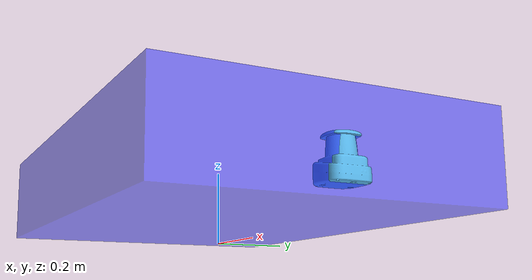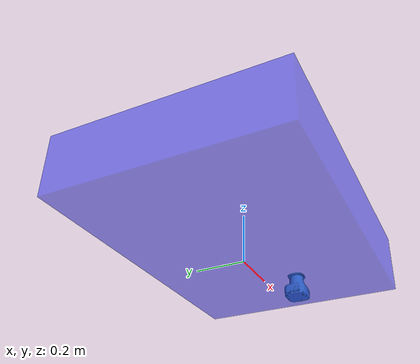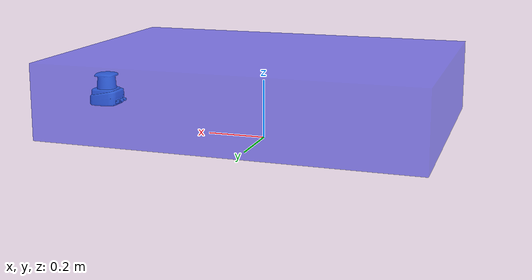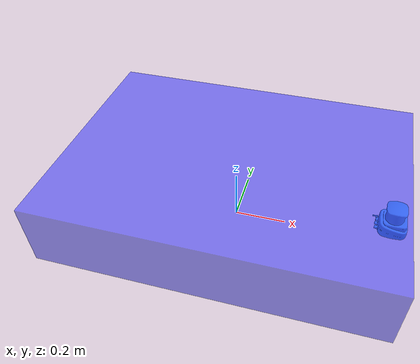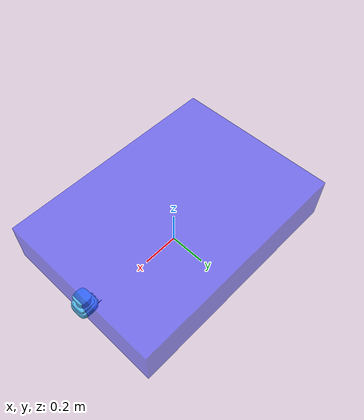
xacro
<?xml version="1.0"?>
<robot xmlns:xacro="http://wiki.ros.org/xacro" name="kf2404" >
    <!-- create a virtual root link -->
    <link name="base_footprint" />
    <!-- instantiate r2300 macro -->
    <link name="scanner_link" >
        <visual>
            <origin xyz="0 0 0" rpy="0 0 0" />
            <geometry>
                <mesh filename="package://orient_description/kf2404/meshes/R2000.stl" scale="0.001 0.001 0.001" />
            </geometry>
        </visual>
    </link>

    <link name="base_link">
        <visual>
            <origin xyz="0.0 0.0 0.0" rpy="0 0 0"/>
            <geometry>
                <box size="1.25 0.9 0.25" />
            </geometry>
            <material name="blue">
                <color rgba="0.1 0.1 1.0 0.5"/>
            </material>
        </visual>
    </link>
    <!-- connect world link to scanner link -->
    <joint name="base_link_joint" type="fixed">
        <parent link="base_footprint" />
        <child link = "base_link" />
        <origin xyz="0.0 0.0 0.175" rpy="0.0 0.0 0.0" />
    </joint>
    <!-- connect world link to scanner link -->
    <joint name="scanner_link_joint" type="fixed">
        <parent link="base_link" />
        <child link = "scanner_link" />
        <origin xyz="0.6 0.0 0.0" rpy="0.0 0.0 0.0" />
    </joint>
</robot>
